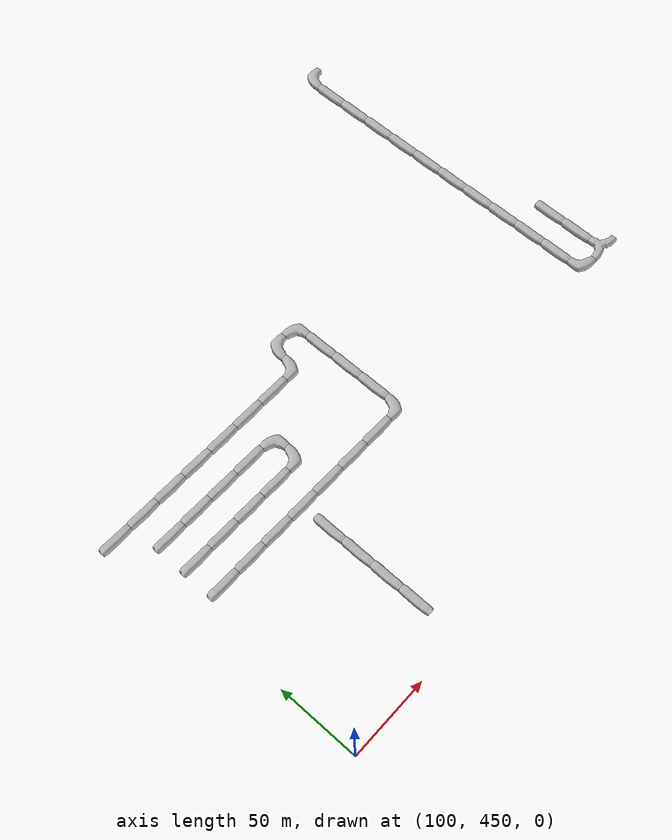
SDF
<sdf version="1.6">
 <world name="cave_16000_0">
  <include>
   <static>true</static>
   <name>cave_21_27</name>
   <pose>420 540 0 0 0 0.0</pose>
   <uri>model://cave_3way_20m</uri>
  </include>
  <include>
   <static>true</static>
   <name>cave_20_27</name>
   <pose>400 540 0 0 0 0.0</pose>
   <uri>model://cave_L_20m</uri>
  </include>
  <include>
   <static>true</static>
   <name>cave_20_28</name>
   <pose>400 560 0 0 0 0.0</pose>
   <uri>model://cave_straight_20m</uri>
  </include>
  <include>
   <static>true</static>
   <name>cave_20_29</name>
   <pose>400 580 0 0 0 0.0</pose>
   <uri>model://cave_straight_20m</uri>
  </include>
  <include>
   <static>true</static>
   <name>cave_20_30</name>
   <pose>400 600 0 0 0 0.0</pose>
   <uri>model://cave_straight_20m</uri>
  </include>
  <include>
   <static>true</static>
   <name>cave_20_31</name>
   <pose>400 620 0 0 0 0.0</pose>
   <uri>model://cave_straight_20m</uri>
  </include>
  <include>
   <static>true</static>
   <name>cave_20_32</name>
   <pose>400 640 0 0 0 0.0</pose>
   <uri>model://cave_straight_20m</uri>
  </include>
  <include>
   <static>true</static>
   <name>cave_20_33</name>
   <pose>400 660 0 0 0 0.0</pose>
   <uri>model://cave_straight_20m</uri>
  </include>
  <include>
   <static>true</static>
   <name>cave_20_34</name>
   <pose>400 680 0 0 0 0.0</pose>
   <uri>model://cave_straight_20m</uri>
  </include>
  <include>
   <static>true</static>
   <name>cave_20_35</name>
   <pose>400 700 0 0 0 0.0</pose>
   <uri>model://cave_straight_20m</uri>
  </include>
  <include>
   <static>true</static>
   <name>cave_20_36</name>
   <pose>400 720 0 0 0 0.0</pose>
   <uri>model://cave_straight_20m</uri>
  </include>
  <include>
   <static>true</static>
   <name>cave_20_37</name>
   <pose>400 740 0 0 0 0.0</pose>
   <uri>model://cave_straight_20m</uri>
  </include>
  <include>
   <static>true</static>
   <name>cave_20_38</name>
   <pose>400 760 0 0 0 -1.5707963267948966</pose>
   <uri>model://cave_L_20m</uri>
  </include>
  <include>
   <static>true</static>
   <name>cave_21_28</name>
   <pose>420 560 0 0 0 0.0</pose>
   <uri>model://cave_straight_20m</uri>
  </include>
  <include>
   <static>true</static>
   <name>cave_21_29</name>
   <pose>420 580 0 0 0 0.0</pose>
   <uri>model://cave_straight_20m</uri>
  </include>
  <include>
   <static>true</static>
   <name>cave_9_24</name>
   <pose>180 480 0 0 0 0.0</pose>
   <uri>model://cave_straight_20m</uri>
  </include>
  <include>
   <static>true</static>
   <name>cave_9_25</name>
   <pose>180 500 0 0 0 0.0</pose>
   <uri>model://cave_straight_20m</uri>
  </include>
  <include>
   <static>true</static>
   <name>cave_9_26</name>
   <pose>180 520 0 0 0 0.0</pose>
   <uri>model://cave_straight_20m</uri>
  </include>
  <include>
   <static>true</static>
   <name>cave_9_27</name>
   <pose>180 540 0 0 0 0.0</pose>
   <uri>model://cave_straight_20m</uri>
  </include>
  <include>
   <static>true</static>
   <name>cave_6_28</name>
   <pose>120 560 0 0 0 1.5707963267948966</pose>
   <uri>model://cave_straight_20m</uri>
  </include>
  <include>
   <static>true</static>
   <name>cave_7_28</name>
   <pose>140 560 0 0 0 1.5707963267948966</pose>
   <uri>model://cave_straight_20m</uri>
  </include>
  <include>
   <static>true</static>
   <name>cave_8_28</name>
   <pose>160 560 0 0 0 1.5707963267948966</pose>
   <uri>model://cave_straight_20m</uri>
  </include>
  <include>
   <static>true</static>
   <name>cave_9_28</name>
   <pose>180 560 0 0 0 1.5707963267948966</pose>
   <uri>model://cave_straight_20m</uri>
  </include>
  <include>
   <static>true</static>
   <name>cave_10_28</name>
   <pose>200 560 0 0 0 1.5707963267948966</pose>
   <uri>model://cave_straight_20m</uri>
  </include>
  <include>
   <static>true</static>
   <name>cave_11_28</name>
   <pose>220 560 0 0 0 1.5707963267948966</pose>
   <uri>model://cave_straight_20m</uri>
  </include>
  <include>
   <static>true</static>
   <name>cave_12_28</name>
   <pose>240 560 0 0 0 1.5707963267948966</pose>
   <uri>model://cave_straight_20m</uri>
  </include>
  <include>
   <static>true</static>
   <name>cave_13_28</name>
   <pose>260 560 0 0 0 1.5707963267948966</pose>
   <uri>model://cave_L_20m</uri>
  </include>
  <include>
   <static>true</static>
   <name>cave_13_29</name>
   <pose>260 580 0 0 0 0.0</pose>
   <uri>model://cave_straight_20m</uri>
  </include>
  <include>
   <static>true</static>
   <name>cave_13_30</name>
   <pose>260 600 0 0 0 0.0</pose>
   <uri>model://cave_straight_20m</uri>
  </include>
  <include>
   <static>true</static>
   <name>cave_13_31</name>
   <pose>260 620 0 0 0 0.0</pose>
   <uri>model://cave_straight_20m</uri>
  </include>
  <include>
   <static>true</static>
   <name>cave_13_32</name>
   <pose>260 640 0 0 0 3.141592653589793</pose>
   <uri>model://cave_L_20m</uri>
  </include>
  <include>
   <static>true</static>
   <name>cave_12_32</name>
   <pose>240 640 0 0 0 -1.5707963267948966</pose>
   <uri>model://cave_L_20m</uri>
  </include>
  <include>
   <static>true</static>
   <name>cave_12_31</name>
   <pose>240 620 0 0 0 1.5707963267948966</pose>
   <uri>model://cave_L_20m</uri>
  </include>
  <include>
   <static>true</static>
   <name>cave_11_31</name>
   <pose>220 620 0 0 0 1.5707963267948966</pose>
   <uri>model://cave_straight_20m</uri>
  </include>
  <include>
   <static>true</static>
   <name>cave_10_31</name>
   <pose>200 620 0 0 0 1.5707963267948966</pose>
   <uri>model://cave_straight_20m</uri>
  </include>
  <include>
   <static>true</static>
   <name>cave_9_31</name>
   <pose>180 620 0 0 0 1.5707963267948966</pose>
   <uri>model://cave_straight_20m</uri>
  </include>
  <include>
   <static>true</static>
   <name>cave_8_31</name>
   <pose>160 620 0 0 0 1.5707963267948966</pose>
   <uri>model://cave_straight_20m</uri>
  </include>
  <include>
   <static>true</static>
   <name>cave_7_31</name>
   <pose>140 620 0 0 0 1.5707963267948966</pose>
   <uri>model://cave_straight_20m</uri>
  </include>
  <include>
   <static>true</static>
   <name>cave_6_31</name>
   <pose>120 620 0 0 0 1.5707963267948966</pose>
   <uri>model://cave_straight_20m</uri>
  </include>
  <include>
   <static>true</static>
   <name>cave_5_31</name>
   <pose>100 620 0 0 0 1.5707963267948966</pose>
   <uri>model://cave_straight_20m</uri>
  </include>
  <include>
   <static>true</static>
   <name>cave_6_30</name>
   <pose>120 600 0 0 0 1.5707963267948966</pose>
   <uri>model://cave_straight_20m</uri>
  </include>
  <include>
   <static>true</static>
   <name>cave_7_30</name>
   <pose>140 600 0 0 0 1.5707963267948966</pose>
   <uri>model://cave_straight_20m</uri>
  </include>
  <include>
   <static>true</static>
   <name>cave_8_30</name>
   <pose>160 600 0 0 0 1.5707963267948966</pose>
   <uri>model://cave_straight_20m</uri>
  </include>
  <include>
   <static>true</static>
   <name>cave_9_30</name>
   <pose>180 600 0 0 0 1.5707963267948966</pose>
   <uri>model://cave_straight_20m</uri>
  </include>
  <include>
   <static>true</static>
   <name>cave_10_30</name>
   <pose>200 600 0 0 0 3.141592653589793</pose>
   <uri>model://cave_L_20m</uri>
  </include>
  <include>
   <static>true</static>
   <name>cave_10_29</name>
   <pose>200 580 0 0 0 1.5707963267948966</pose>
   <uri>model://cave_L_20m</uri>
  </include>
  <include>
   <static>true</static>
   <name>cave_9_29</name>
   <pose>180 580 0 0 0 1.5707963267948966</pose>
   <uri>model://cave_straight_20m</uri>
  </include>
  <include>
   <static>true</static>
   <name>cave_8_29</name>
   <pose>160 580 0 0 0 1.5707963267948966</pose>
   <uri>model://cave_straight_20m</uri>
  </include>
  <include>
   <static>true</static>
   <name>cave_7_29</name>
   <pose>140 580 0 0 0 1.5707963267948966</pose>
   <uri>model://cave_straight_20m</uri>
  </include>
  <include>
   <static>true</static>
   <name>cave_6_29</name>
   <pose>120 580 0 0 0 1.5707963267948966</pose>
   <uri>model://cave_straight_20m</uri>
  </include>
 </world>
</sdf>
